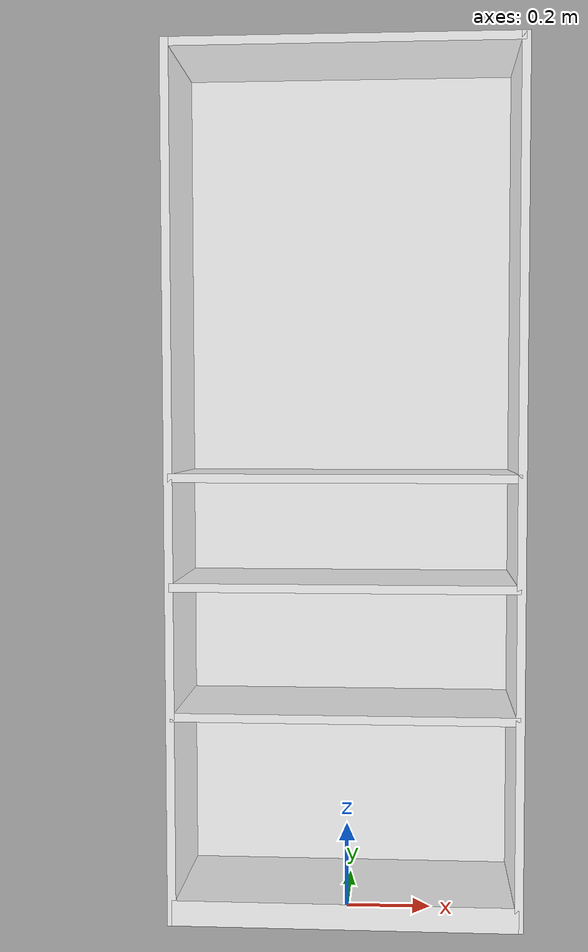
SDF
<?xml version="1.0" ?>
<sdf version="1.8">
  <model name="wrc_bookshelf">
    <link name="link">
      <inertial>
        <mass>1.0</mass>
      </inertial>

      <collision name="back">
        <pose>0 0.005 1.01 0 0 0</pose>
        <geometry>
          <box>
            <size>0.8 0.01 2.02</size>
          </box>
        </geometry>
      </collision>

      <visual name="back_v">
        <pose>0 0.14 1.01 0 0 0</pose>
        <geometry>
          <box>
            <size>0.8 0.01 2.02</size>
          </box>
        </geometry>

        <material>
          <ambient>1 1 1 1</ambient>
          <diffuse>1 1 1 1</diffuse>

        </material>
      </visual>

      <collision name="left_side">
        <pose>0.4 0 1.01 0 0 0</pose>
        <geometry>
          <box>
            <size>0.02 0.28 2.02</size>
          </box>
        </geometry>
      </collision>

      <visual name="left_side_v">
        <pose>0.4 0 1.01 0 0 0</pose>
        <geometry>
          <box>
            <size>0.02 0.28 2.02</size>
          </box>
        </geometry>

        <material>
          <ambient>1 1 1 1</ambient>
          <diffuse>1 1 1 1</diffuse>

        </material>
      </visual>

      <collision name="right_side">
        <pose>-0.4 0 1.01 0 0 0</pose>
        <geometry>
          <box>
            <size>0.02 0.28 2.02</size>
          </box>
        </geometry>
      </collision>

      <visual name="right_side_v">
        <pose>-0.4 0 1.01 0 0 0</pose>
        <geometry>
          <box>
            <size>0.02 0.28 2.02</size>
          </box>
        </geometry>

        <material>
          <ambient>1 1 1 1</ambient>
          <diffuse>1 1 1 1</diffuse>

        </material>
      </visual>

      <collision name="bottom">
        <pose>0 0 0.03 0 0 0</pose>
        <geometry>
          <box>
            <size>0.8 0.28 0.06</size>
          </box>
        </geometry>
      </collision>

      <visual name="bottom_v">
        <pose>0 0 0.03 0 0 0</pose>
        <geometry>
          <box>
            <size>0.8 0.28 0.06</size>
          </box>
        </geometry>

        <material>
          <ambient>1 1 1 1</ambient>
          <diffuse>1 1 1 1</diffuse>

        </material>
      </visual>

      <collision name="top">
        <pose>0 0 2.01 0 0 0</pose>
        <geometry>
          <box>
            <size>0.8 0.28 0.02</size>
          </box>
        </geometry>
      </collision>

      <visual name="top_v">
        <pose>0 0 2.01 0 0 0</pose>
        <geometry>
          <box>
            <size>0.8 0.28 0.02</size>
          </box>
        </geometry>

        <material>
          <ambient>1 1 1 1</ambient>
          <diffuse>1 1 1 1</diffuse>

        </material>
      </visual>

      <collision name="slit1">
        <pose>0 0 0.49 0 0 0</pose>
        <geometry>
          <box>
            <size>0.8 0.28 0.02</size>
          </box>
        </geometry>
      </collision>

      <visual name="slit1_v">
        <pose>0 0 0.49 0 0 0</pose>
        <geometry>
          <box>
            <size>0.8 0.28 0.02</size>
          </box>
        </geometry>

        <material>
          <ambient>1 1 1 1</ambient>
          <diffuse>1 1 1 1</diffuse>

        </material>
      </visual>

      <collision name="slit2">
        <pose>0 0 0.79 0 0 0</pose>
        <geometry>
          <box>
            <size>0.8 0.28 0.02</size>
          </box>
        </geometry>
      </collision>

      <visual name="slit2_v">
        <pose>0 0 0.79 0 0 0</pose>
        <geometry>
          <box>
            <size>0.8 0.28 0.02</size>
          </box>
        </geometry>

        <material>
          <ambient>1 1 1 1</ambient>
          <diffuse>1 1 1 1</diffuse>

        </material>
      </visual>

      <collision name="slit3">
        <pose>0 0 1.04 0 0 0</pose>
        <geometry>
          <box>
            <size>0.8 0.28 0.02</size>
          </box>
        </geometry>
      </collision>

      <visual name="slit3_v">
        <pose>0 0 1.04 0 0 0</pose>
        <geometry>
          <box>
            <size>0.8 0.28 0.02</size>
          </box>
        </geometry>

        <material>
          <ambient>1 1 1 1</ambient>
          <diffuse>1 1 1 1</diffuse>

        </material>
      </visual>
    </link>
  </model>
</sdf>
